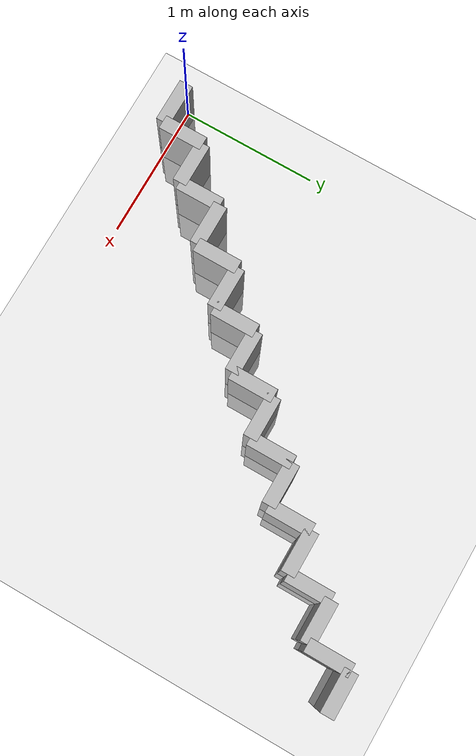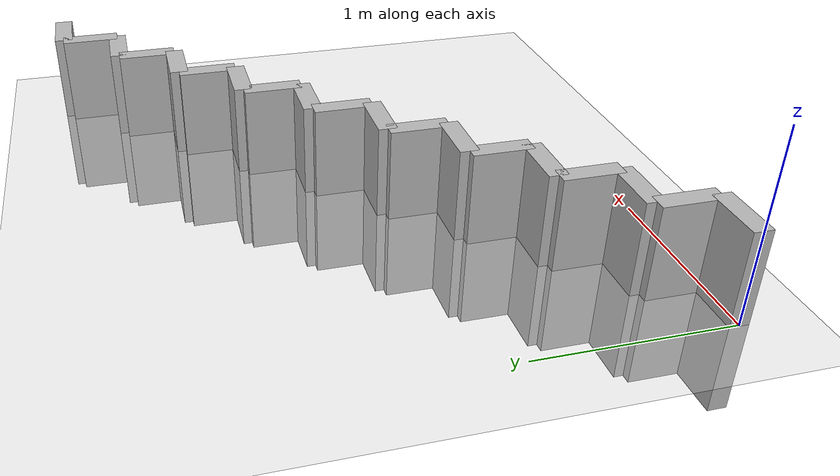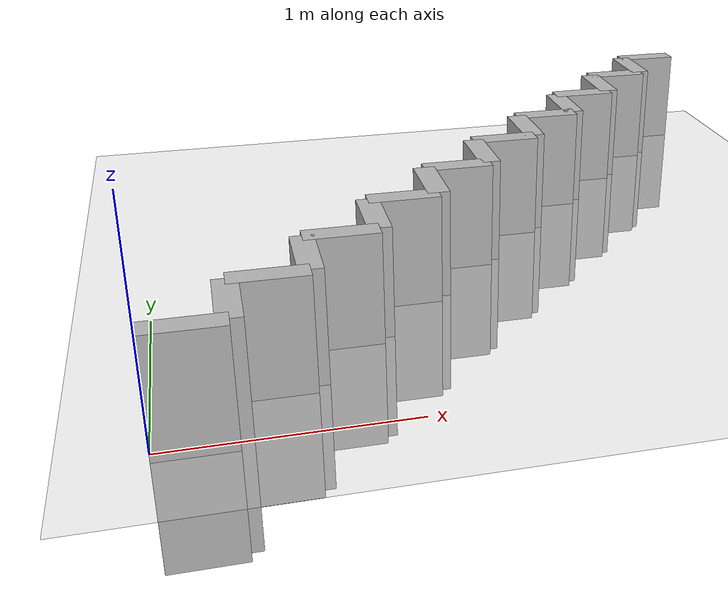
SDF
<?xml version="1.0" ?>
<sdf version="1.6">
  <world name="default">
    <include>
      <uri>model://ground_plane</uri>
    </include>
    <include>
      <uri>model://sun</uri>
    </include>

    <model name="wall_0">
      <static>true</static>
      <link name="link">
        <pose>0.15789473684210525 0 0 0 0 0</pose>
        <collision name="collision">
          <geometry>
            <box>
              <size>0.3157894736842105 0.1 1.0</size>
            </box>
          </geometry>
        </collision>
        <visual name="visual">
          <geometry>
            <box>
              <size>0.3157894736842105 0.1 1.0</size>
            </box>
          </geometry>
        </visual>
      </link>
    </model>

    <model name="wall_1">
      <static>true</static>
      <link name="link">
        <pose>0.3157894736842105 0.15789473684210525 0 0 0 1.57</pose>
        <collision name="collision">
          <geometry>
            <box>
              <size>0.3157894736842105 0.1 1.0</size>
            </box>
          </geometry>
        </collision>
        <visual name="visual">
          <geometry>
            <box>
              <size>0.3157894736842105 0.1 1.0</size>
            </box>
          </geometry>
        </visual>
      </link>
    </model>

    <model name="wall_2">
      <static>true</static>
      <link name="link">
        <pose>0.47368421052631576 0.3157894736842105 0 0 0 0</pose>
        <collision name="collision">
          <geometry>
            <box>
              <size>0.3157894736842105 0.1 1.0</size>
            </box>
          </geometry>
        </collision>
        <visual name="visual">
          <geometry>
            <box>
              <size>0.3157894736842105 0.1 1.0</size>
            </box>
          </geometry>
        </visual>
      </link>
    </model>

    <model name="wall_3">
      <static>true</static>
      <link name="link">
        <pose>0.631578947368421 0.47368421052631576 0 0 0 1.57</pose>
        <collision name="collision">
          <geometry>
            <box>
              <size>0.3157894736842105 0.1 1.0</size>
            </box>
          </geometry>
        </collision>
        <visual name="visual">
          <geometry>
            <box>
              <size>0.3157894736842105 0.1 1.0</size>
            </box>
          </geometry>
        </visual>
      </link>
    </model>

    <model name="wall_4">
      <static>true</static>
      <link name="link">
        <pose>0.7894736842105263 0.631578947368421 0 0 0 0</pose>
        <collision name="collision">
          <geometry>
            <box>
              <size>0.3157894736842105 0.1 1.0</size>
            </box>
          </geometry>
        </collision>
        <visual name="visual">
          <geometry>
            <box>
              <size>0.3157894736842105 0.1 1.0</size>
            </box>
          </geometry>
        </visual>
      </link>
    </model>

    <model name="wall_5">
      <static>true</static>
      <link name="link">
        <pose>0.9473684210526316 0.7894736842105263 0 0 0 1.57</pose>
        <collision name="collision">
          <geometry>
            <box>
              <size>0.3157894736842105 0.1 1.0</size>
            </box>
          </geometry>
        </collision>
        <visual name="visual">
          <geometry>
            <box>
              <size>0.3157894736842105 0.1 1.0</size>
            </box>
          </geometry>
        </visual>
      </link>
    </model>

    <model name="wall_6">
      <static>true</static>
      <link name="link">
        <pose>1.105263157894737 0.9473684210526316 0 0 0 0</pose>
        <collision name="collision">
          <geometry>
            <box>
              <size>0.3157894736842105 0.1 1.0</size>
            </box>
          </geometry>
        </collision>
        <visual name="visual">
          <geometry>
            <box>
              <size>0.3157894736842105 0.1 1.0</size>
            </box>
          </geometry>
        </visual>
      </link>
    </model>

    <model name="wall_7">
      <static>true</static>
      <link name="link">
        <pose>1.2631578947368423 1.105263157894737 0 0 0 1.57</pose>
        <collision name="collision">
          <geometry>
            <box>
              <size>0.3157894736842105 0.1 1.0</size>
            </box>
          </geometry>
        </collision>
        <visual name="visual">
          <geometry>
            <box>
              <size>0.3157894736842105 0.1 1.0</size>
            </box>
          </geometry>
        </visual>
      </link>
    </model>

    <model name="wall_8">
      <static>true</static>
      <link name="link">
        <pose>1.4210526315789476 1.2631578947368423 0 0 0 0</pose>
        <collision name="collision">
          <geometry>
            <box>
              <size>0.3157894736842105 0.1 1.0</size>
            </box>
          </geometry>
        </collision>
        <visual name="visual">
          <geometry>
            <box>
              <size>0.3157894736842105 0.1 1.0</size>
            </box>
          </geometry>
        </visual>
      </link>
    </model>

    <model name="wall_9">
      <static>true</static>
      <link name="link">
        <pose>1.5789473684210529 1.4210526315789476 0 0 0 1.57</pose>
        <collision name="collision">
          <geometry>
            <box>
              <size>0.3157894736842105 0.1 1.0</size>
            </box>
          </geometry>
        </collision>
        <visual name="visual">
          <geometry>
            <box>
              <size>0.3157894736842105 0.1 1.0</size>
            </box>
          </geometry>
        </visual>
      </link>
    </model>

    <model name="wall_10">
      <static>true</static>
      <link name="link">
        <pose>1.7368421052631582 1.5789473684210529 0 0 0 0</pose>
        <collision name="collision">
          <geometry>
            <box>
              <size>0.3157894736842105 0.1 1.0</size>
            </box>
          </geometry>
        </collision>
        <visual name="visual">
          <geometry>
            <box>
              <size>0.3157894736842105 0.1 1.0</size>
            </box>
          </geometry>
        </visual>
      </link>
    </model>

    <model name="wall_11">
      <static>true</static>
      <link name="link">
        <pose>1.8947368421052635 1.7368421052631582 0 0 0 1.57</pose>
        <collision name="collision">
          <geometry>
            <box>
              <size>0.3157894736842105 0.1 1.0</size>
            </box>
          </geometry>
        </collision>
        <visual name="visual">
          <geometry>
            <box>
              <size>0.3157894736842105 0.1 1.0</size>
            </box>
          </geometry>
        </visual>
      </link>
    </model>

    <model name="wall_12">
      <static>true</static>
      <link name="link">
        <pose>2.0526315789473686 1.8947368421052635 0 0 0 0</pose>
        <collision name="collision">
          <geometry>
            <box>
              <size>0.3157894736842105 0.1 1.0</size>
            </box>
          </geometry>
        </collision>
        <visual name="visual">
          <geometry>
            <box>
              <size>0.3157894736842105 0.1 1.0</size>
            </box>
          </geometry>
        </visual>
      </link>
    </model>

    <model name="wall_13">
      <static>true</static>
      <link name="link">
        <pose>2.210526315789474 2.0526315789473686 0 0 0 1.57</pose>
        <collision name="collision">
          <geometry>
            <box>
              <size>0.3157894736842105 0.1 1.0</size>
            </box>
          </geometry>
        </collision>
        <visual name="visual">
          <geometry>
            <box>
              <size>0.3157894736842105 0.1 1.0</size>
            </box>
          </geometry>
        </visual>
      </link>
    </model>

    <model name="wall_14">
      <static>true</static>
      <link name="link">
        <pose>2.368421052631579 2.210526315789474 0 0 0 0</pose>
        <collision name="collision">
          <geometry>
            <box>
              <size>0.3157894736842105 0.1 1.0</size>
            </box>
          </geometry>
        </collision>
        <visual name="visual">
          <geometry>
            <box>
              <size>0.3157894736842105 0.1 1.0</size>
            </box>
          </geometry>
        </visual>
      </link>
    </model>

    <model name="wall_15">
      <static>true</static>
      <link name="link">
        <pose>2.5263157894736845 2.368421052631579 0 0 0 1.57</pose>
        <collision name="collision">
          <geometry>
            <box>
              <size>0.3157894736842105 0.1 1.0</size>
            </box>
          </geometry>
        </collision>
        <visual name="visual">
          <geometry>
            <box>
              <size>0.3157894736842105 0.1 1.0</size>
            </box>
          </geometry>
        </visual>
      </link>
    </model>

    <model name="wall_16">
      <static>true</static>
      <link name="link">
        <pose>2.68421052631579 2.5263157894736845 0 0 0 0</pose>
        <collision name="collision">
          <geometry>
            <box>
              <size>0.3157894736842105 0.1 1.0</size>
            </box>
          </geometry>
        </collision>
        <visual name="visual">
          <geometry>
            <box>
              <size>0.3157894736842105 0.1 1.0</size>
            </box>
          </geometry>
        </visual>
      </link>
    </model>

    <model name="wall_17">
      <static>true</static>
      <link name="link">
        <pose>2.842105263157895 2.68421052631579 0 0 0 1.57</pose>
        <collision name="collision">
          <geometry>
            <box>
              <size>0.3157894736842105 0.1 1.0</size>
            </box>
          </geometry>
        </collision>
        <visual name="visual">
          <geometry>
            <box>
              <size>0.3157894736842105 0.1 1.0</size>
            </box>
          </geometry>
        </visual>
      </link>
    </model>

    <model name="wall_18">
      <static>true</static>
      <link name="link">
        <pose>3.0000000000000004 2.842105263157895 0 0 0 0</pose>
        <collision name="collision">
          <geometry>
            <box>
              <size>0.3157894736842105 0.1 1.0</size>
            </box>
          </geometry>
        </collision>
        <visual name="visual">
          <geometry>
            <box>
              <size>0.3157894736842105 0.1 1.0</size>
            </box>
          </geometry>
        </visual>
      </link>
    </model>

  </world>
</sdf>
